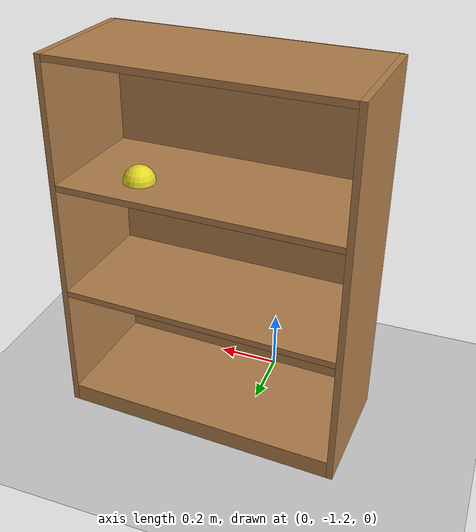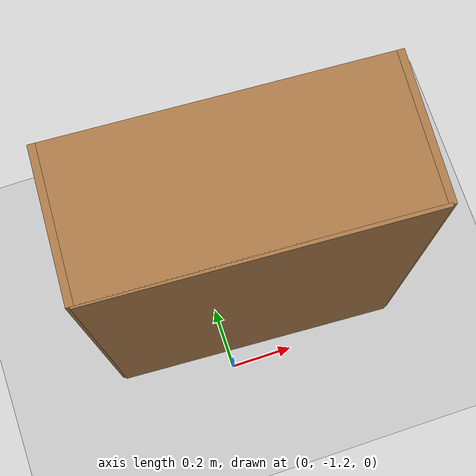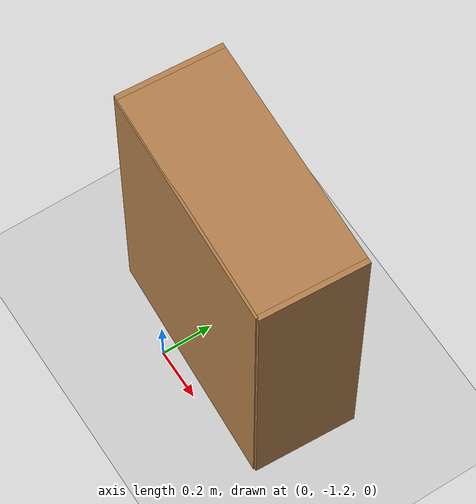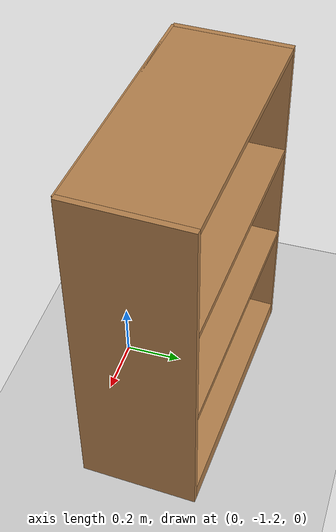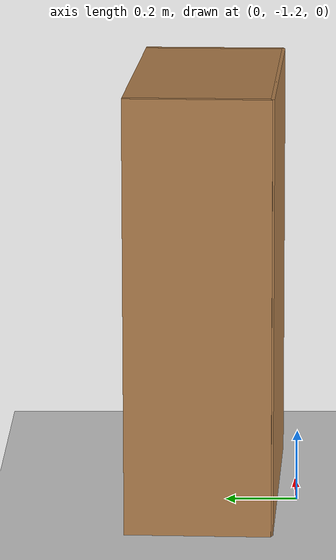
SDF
<sdf version="1.6">
 <world name="default">
  <light name="sun" type="directional">
   <pose>0 0 10 0 -0 0</pose>
   <diffuse>0.8 0.8 0.8 1</diffuse>
   <specular>0.1 0.1 0.1 1</specular>
   <attenuation>
    <range>1000</range>
    <constant>0.9</constant>
    <linear>0.01</linear>
    <quadratic>0.001</quadratic>
   </attenuation>
   <direction>-0.5 0.5 -1</direction>
  </light>
  <scene>
   <ambient>0.2 0.2 0.2 1</ambient>
   <background>1 1 1 1</background>
   <shadows>0</shadows>
   <grid>1</grid>
   <origin_visual>1</origin_visual>
  </scene>
  <gravity>0 0 -9.8</gravity>
  <magnetic_field>6e-06 2.3e-05 -4.2e-05</magnetic_field>
  <atmosphere type="adiabatic"/>
  <physics name="dart_1ms" default="1" type="ode">
   <max_step_size>0.001</max_step_size>
   <real_time_factor>1</real_time_factor>
   <real_time_update_rate>1000</real_time_update_rate>
  </physics>
  <physics name="dart_2ms" default="0" type="dart">
   <max_step_size>0.002</max_step_size>
   <real_time_factor>1</real_time_factor>
   <real_time_update_rate>500</real_time_update_rate>
  </physics>
  <physics name="dart_3ms" default="0" type="dart">
   <max_step_size>0.003</max_step_size>
   <real_time_factor>1</real_time_factor>
   <real_time_update_rate>333</real_time_update_rate>
  </physics>
  <spherical_coordinates>
   <surface_model>EARTH_WGS84</surface_model>
   <latitude_deg>0</latitude_deg>
   <longitude_deg>0</longitude_deg>
   <elevation>0</elevation>
   <heading_deg>0</heading_deg>
  </spherical_coordinates>
  <model name="bookshelf">
   <static>1</static>
   <link name="link">
    <inertial><mass>1</mass></inertial>
    <collision name="back">
     <pose>0 0.005 0.6 0 -0 0</pose>
     <geometry><box><size>0.9 0.01 1.2</size></box></geometry>
    </collision>
    <visual name="visual1">
     <pose>0 0.005 0.6 0 -0 0</pose>
     <geometry><box><size>0.9 0.01 1.2</size></box></geometry>
     <material>
      <script><uri>file://media/materials/scripts/gazebo.material</uri><name>Gazebo/Wood</name></script>
     </material>
    </visual>
    <collision name="left_side">
     <pose>0.45 -0.195 0.6 0 -0 0</pose>
     <geometry><box><size>0.02 0.4 1.2</size></box></geometry>
    </collision>
    <visual name="visual2">
     <pose>0.45 -0.195 0.6 0 -0 0</pose>
     <geometry><box><size>0.02 0.4 1.2</size></box></geometry>
     <material>
      <script><uri>file://media/materials/scripts/gazebo.material</uri><name>Gazebo/Wood</name></script>
     </material>
    </visual>
    <collision name="right_side">
     <pose>-0.45 -0.195 0.6 0 -0 0</pose>
     <geometry><box><size>0.02 0.4 1.2</size></box></geometry>
    </collision>
    <visual name="visual3">
     <pose>-0.45 -0.195 0.6 0 -0 0</pose>
     <geometry><box><size>0.02 0.4 1.2</size></box></geometry>
     <material>
      <script><uri>file://media/materials/scripts/gazebo.material</uri><name>Gazebo/Wood</name></script>
     </material>
    </visual>
    <collision name="bottom">
     <pose>0 -0.195 0.03 0 -0 0</pose>
     <geometry><box><size>0.88 0.4 0.06</size></box></geometry>
    </collision>
    <visual name="visual4">
     <pose>0 -0.195 0.03 0 -0 0</pose>
     <geometry><box><size>0.88 0.4 0.06</size></box></geometry>
     <material>
      <script><uri>file://media/materials/scripts/gazebo.material</uri><name>Gazebo/Wood</name></script>
     </material>
    </visual>
    <collision name="top">
     <pose>0 -0.195 1.19 0 -0 0</pose>
     <geometry><box><size>0.88 0.4 0.02</size></box></geometry>
    </collision>
    <visual name="visual5">
     <pose>0 -0.195 1.19 0 -0 0</pose>
     <geometry><box><size>0.88 0.4 0.02</size></box></geometry>
     <material>
      <script><uri>file://media/materials/scripts/gazebo.material</uri><name>Gazebo/Wood</name></script>
     </material>
    </visual>
    <collision name="low_shelf">
     <pose>0 -0.195 0.43 0 -0 0</pose>
     <geometry><box><size>0.88 0.4 0.02</size></box></geometry>
    </collision>
    <visual name="visual6">
     <pose>0 -0.195 0.43 0 -0 0</pose>
     <geometry><box><size>0.88 0.4 0.02</size></box></geometry>
     <material>
      <script><uri>file://media/materials/scripts/gazebo.material</uri><name>Gazebo/Wood</name></script>
     </material>
    </visual>
    <collision name="high_shelf">
     <pose>0 -0.195 0.8 0 -0 0</pose>
     <geometry><box><size>0.88 0.4 0.02</size></box></geometry>
    </collision>
    <visual name="visual7">
     <pose>0 -0.195 0.8 0 -0 0</pose>
     <geometry><box><size>0.88 0.4 0.02</size></box></geometry>
     <material>
      <script><uri>file://media/materials/scripts/gazebo.material</uri><name>Gazebo/Wood</name></script>
     </material>
    </visual>
   </link>
   <pose>0.099534 -1.13982 0 0 -0 3.08995</pose>
  </model>
  <model name="dummy">
   <static>1</static>
   <link name="link">
    <inertial>
     <mass>0.0122</mass>
     <inertia>
      <ixx>1.08758e-06</ixx>
      <ixy>0</ixy>
      <ixz>0</ixz>
      <iyy>1.08758e-06</iyy>
      <iyz>0</iyz>
      <izz>2.16703e-06</izz>
     </inertia>
    </inertial>
    <visual name="visual">
     <geometry><sphere><radius>0.05</radius></sphere></geometry>
     <material>
      <script><uri>file://media/materials/scripts/gazebo.material</uri><name>Gazebo/Yellow</name></script>
     </material>
    </visual>
   </link>
   <pose>0.341573 -0.883181 0.810921 0.003502 -0.010163 0.182756</pose>
  </model>
  <model name="ground_plane">
   <static>1</static>
   <link name="link">
    <collision name="collision">
     <geometry><plane><normal>0 0 1</normal><size>100 100</size></plane></geometry>
     <surface>
      <contact><collide_bitmask>65535</collide_bitmask></contact>
      <friction><ode><mu>100</mu><mu2>50</mu2></ode></friction>
     </surface>
    </collision>
    <visual name="visual">
     <cast_shadows>0</cast_shadows>
     <geometry><plane><normal>0 0 1</normal><size>100 100</size></plane></geometry>
     <material>
      <script><uri>file://media/materials/scripts/gazebo.material</uri><name>Gazebo/Grey</name></script>
     </material>
    </visual>
   </link>
   <pose>1.04473 0.134028 0 0 -0 0</pose>
  </model>
 </world>
</sdf>
